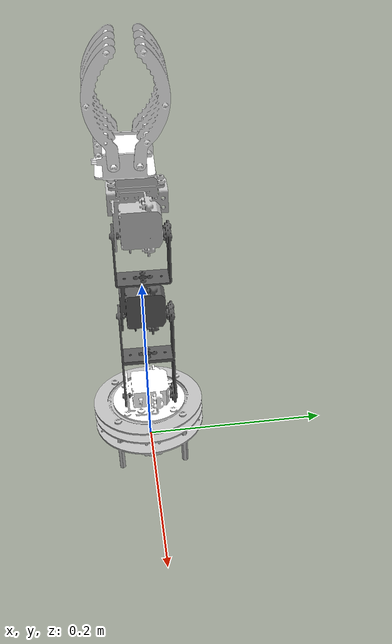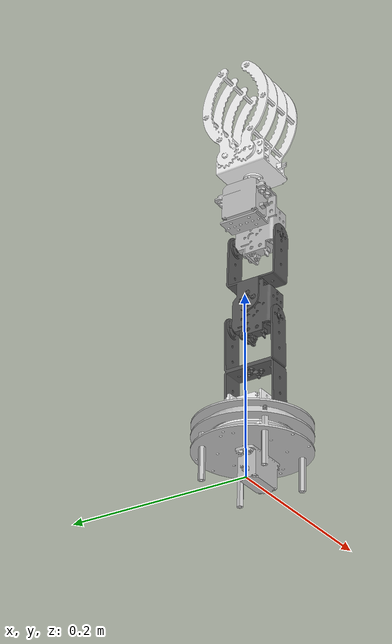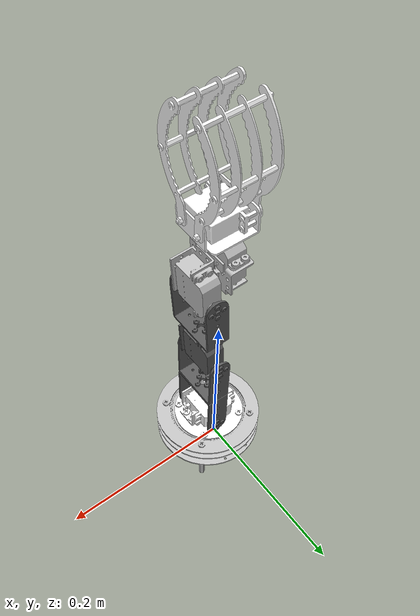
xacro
<?xml version="1.0"?>
<robot xmlns:xacro="http://www.ros.org/wiki/xacro" name="mygo">
    <xacro:arg name="initial_positions_file" default="initial_positions.yaml" />

    <!-- Import mygo urdf file -->
    <xacro:include filename="$(find mygo_robot_description)/urdf/main.urdf.xacro" />

    <!-- Import control_xacro -->
    <xacro:include filename="mygo.ros2_control.xacro" />

    <xacro:mygo_ros2_control name="FakeSystem" initial_positions_file="$(arg initial_positions_file)"/>

</robot>

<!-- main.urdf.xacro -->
<robot name="mygo" xmlns:xacro="http://www.ros.org/wiki/xacro">
  <xacro:include filename="$(find mygo_robot_description)/urdf/common_properties.xacro"/>
  <xacro:include filename="$(find mygo_robot_description)/urdf/arm.xacro"/>
  <xacro:include filename="$(find mygo_robot_description)/urdf/gripper.xacro"/>

  <xacro:mygo_arm/>
  <xacro:mygo_gripper/>
</robot>

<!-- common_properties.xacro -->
<robot xmlns:xacro="http://www.ros.org/wiki/xacro">
  <material name="gray">
    <color rgba="0.75 0.75 0.75 1.0"/>
  </material>

  <material name="dark_gray">
    <color rgba="0.35 0.35 0.35 1.0"/>
  </material>

  <material name="white">
    <color rgba="1.0 1.0 1.0 1.0"/>
  </material>
</robot>

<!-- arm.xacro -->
<robot xmlns:xacro="http://www.ros.org/wiki/xacro">
  <xacro:macro name="mygo_arm" params="prefix:=''">
    <link name="${prefix}base_link">
      <visual>
        <origin xyz="0.02 0 0" rpy="0.02 0 0"/>
        <geometry>
          <mesh filename="package://mygo_robot_description/meshes/base_link.STL"/>
        </geometry>
        <material name="gray"/>
      </visual>
      <collision>
        <origin xyz="0.02 0 0" rpy="0.02 0 0"/>
        <geometry>
          <mesh filename="package://mygo_robot_description/meshes/base_link.STL"/>
        </geometry>
      </collision>
    </link>

    <link name="${prefix}link1">
      <visual>
        <origin xyz="0 0 0" rpy="0 0 0"/>
        <geometry>
          <mesh filename="package://mygo_robot_description/meshes/link1.STL"/>
        </geometry>
        <material name="white"/>
      </visual>
      <collision>
        <origin xyz="0 0 0" rpy="0 0 0"/>
        <geometry>
          <mesh filename="package://mygo_robot_description/meshes/link1.STL"/>
        </geometry>
      </collision>
    </link>

    <joint name="${prefix}joint1" type="continuous">
      <origin xyz="0.0097091 0 0.045" rpy="0 0 -0.0093727"/>
      <parent link="${prefix}base_link"/>
      <child link="${prefix}link1"/>
      <axis xyz="0 0 1"/>
    </joint>

    <link name="${prefix}link2">
      <visual>
        <origin xyz="0 0 0" rpy="0 0 0"/>
        <geometry>
          <mesh filename="package://mygo_robot_description/meshes/link2.STL"/>
        </geometry>
        <material name="dark_gray"/>
      </visual>
      <collision>
        <origin xyz="0 0 0" rpy="0 0 0"/>
        <geometry>
          <mesh filename="package://mygo_robot_description/meshes/link2.STL"/>
        </geometry>
      </collision>
    </link>

    <joint name="${prefix}joint2" type="revolute">
      <origin xyz="0.010156 0.02714 0.027844" rpy="-1.5708 0 0"/>
      <parent link="${prefix}link1"/>
      <child link="${prefix}link2"/>
      <axis xyz="0 0 1"/>
      <limit lower="-2.35619" upper="2.35619" effort="10" velocity="1"/>
    </joint>

    <link name="${prefix}link3">
      <visual>
        <origin xyz="0 0 0" rpy="0 0 0"/>
        <geometry>
          <mesh filename="package://mygo_robot_description/meshes/link3.STL"/>
        </geometry>
        <material name="dark_gray"/>
      </visual>
      <collision>
        <origin xyz="0 0 0" rpy="0 0 0"/>
        <geometry>
          <mesh filename="package://mygo_robot_description/meshes/link3.STL"/>
        </geometry>
      </collision>
    </link>

    <joint name="${prefix}joint3" type="revolute">
      <origin xyz="-0.00029081 -0.104 0" rpy="-0.066221 0 0.057239"/>
      <parent link="${prefix}link2"/>
      <child link="${prefix}link3"/>
      <axis xyz="0 -0.066173 0.99781"/>
      <limit lower="-2.35619" upper="2.35619" effort="10" velocity="1"/>
    </joint>

    <link name="${prefix}link4">
      <visual>
        <origin xyz="0 0 0" rpy="0 0 0"/>
        <geometry>
          <mesh filename="package://mygo_robot_description/meshes/link4.STL"/>
        </geometry>
        <material name="gray"/>
      </visual>
      <collision>
        <origin xyz="0 0 0" rpy="0 0 0"/>
        <geometry>
          <mesh filename="package://mygo_robot_description/meshes/link4.STL"/>
        </geometry>
      </collision>
    </link>

    <joint name="${prefix}joint4" type="revolute">
      <origin xyz="0.0011556 -0.096157 -0.006878" rpy="0 0 0"/>
      <parent link="${prefix}link3"/>
      <child link="${prefix}link4"/>
      <axis xyz="0 0.066173 -0.99781"/>
      <limit lower="-2.35619" upper="2.35619" effort="10" velocity="1"/>
    </joint>

    <link name="${prefix}link5">
      <visual>
        <origin xyz="0 0 0" rpy="0 0 0"/>
        <geometry>
          <mesh filename="package://mygo_robot_description/meshes/link5.STL"/>
        </geometry>
        <material name="white"/>
      </visual>
      <collision>
        <origin xyz="0 0 0" rpy="0 0 0"/>
        <geometry>
          <mesh filename="package://mygo_robot_description/meshes/link5.STL"/>
        </geometry>
      </collision>
    </link>

    <joint name="${prefix}joint5" type="revolute">
      <origin xyz="-0.027689 -0.055272 -0.040046" rpy="1.637 0.023059 0.0015295"/>
      <parent link="${prefix}link4"/>
      <child link="${prefix}link5"/>
      <axis xyz="0 0 1"/>
      <limit lower="-2.35619" upper="2.35619" effort="10" velocity="1"/>
    </joint>
  </xacro:macro>
</robot>

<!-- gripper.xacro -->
<robot xmlns:xacro="http://www.ros.org/wiki/xacro">
  <xacro:macro name="mygo_gripper" params="prefix:='' parent:='link5'">
    <link name="${prefix}end_link1">
      <visual>
        <origin xyz="0 0 0" rpy="0 0 0"/>
        <geometry>
          <mesh filename="package://mygo_robot_description/meshes/end link1.STL"/>
        </geometry>
        <material name="white"/>
      </visual>
      <collision>
        <origin xyz="0 0 0" rpy="0 0 0"/>
        <geometry>
          <mesh filename="package://mygo_robot_description/meshes/end link1.STL"/>
        </geometry>
      </collision>
    </link>

    <joint name="${prefix}end_joint1" type="revolute">
      <origin xyz="-0.0284 -0.01 0.0145" rpy="-3.0843 0 -1.5708"/>
      <parent link="${prefix}${parent}"/>
      <child link="${prefix}end_link1"/>
      <axis xyz="0 0.99836 -0.057228"/>
      <limit lower="-3.14159" upper="3.14159" effort="10" velocity="1"/>
    </joint>

    <link name="${prefix}end_link2">
      <visual>
        <origin xyz="0 0 0" rpy="0 0 0"/>
        <geometry>
          <mesh filename="package://mygo_robot_description/meshes/end link2.STL"/>
        </geometry>
        <material name="white"/>
      </visual>
      <collision>
        <origin xyz="0 0 0" rpy="0 0 0"/>
        <geometry>
          <mesh filename="package://mygo_robot_description/meshes/end link2.STL"/>
        </geometry>
      </collision>
    </link>

    <joint name="${prefix}end_joint2" type="revolute">
      <origin xyz="-0.0274 0.014 0.0145" rpy="1.5708 -0.00021712 -1.5708"/>
      <parent link="${prefix}${parent}"/>
      <child link="${prefix}end_link2"/>
      <axis xyz="0 0 1"/>
      <limit lower="-3.14159" upper="3.14159" effort="10" velocity="1"/>
      <mimic joint="${prefix}end_joint1" multiplier="-1" offset="0"/>
    </joint>
  </xacro:macro>
</robot>
